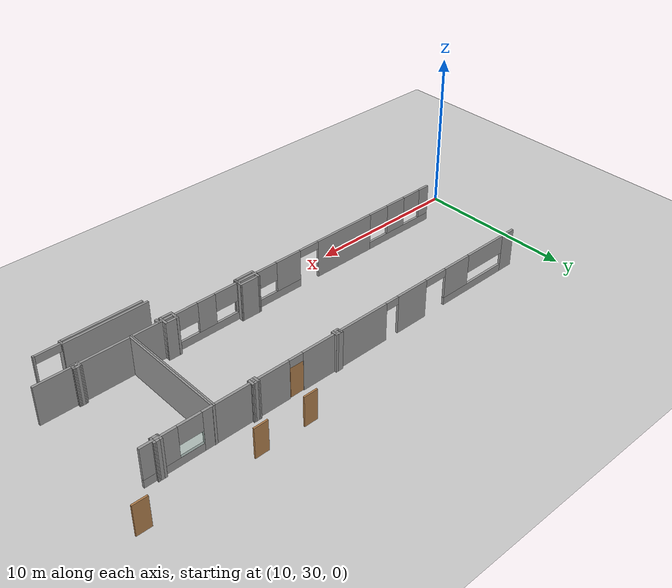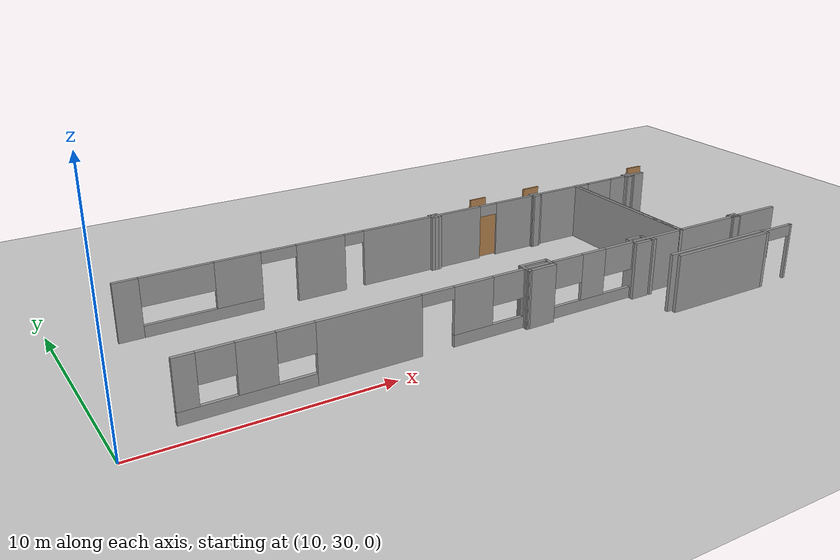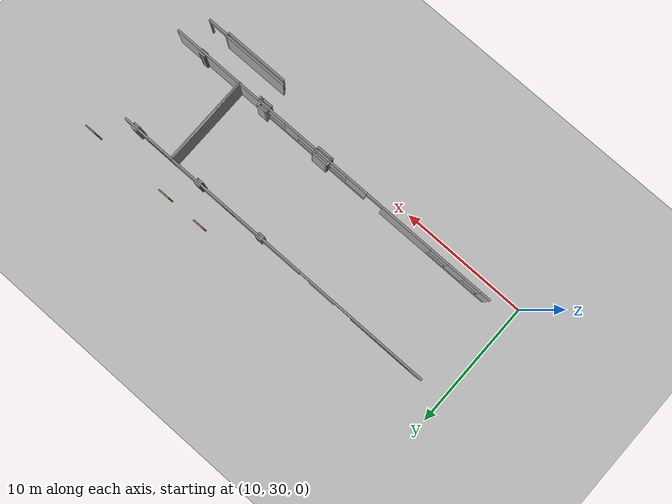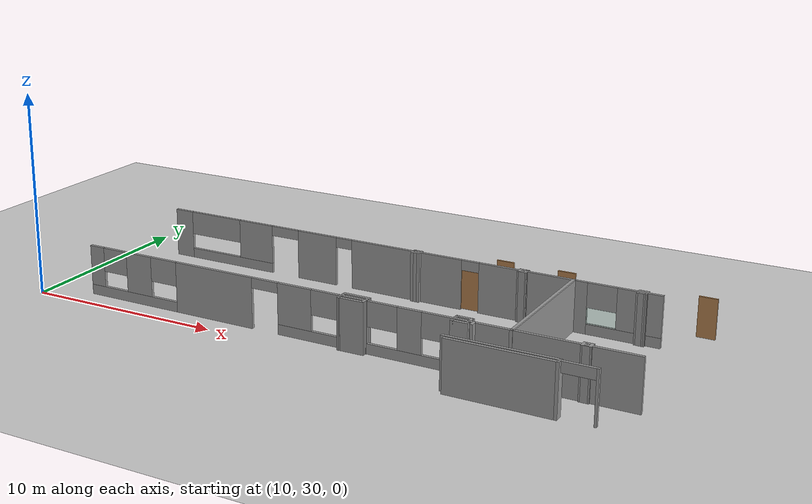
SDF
<sdf version="1.6">
 <world name="default">
  <model name="ground_plane">
   <static>1</static>
   <link name="link">
    <collision name="collision">
     <geometry><plane><normal>0 0 1</normal><size>100 100</size></plane></geometry>
     <surface><friction><ode><mu>100</mu><mu2>50</mu2></ode></friction></surface>
    </collision>
    <visual name="visual">
     <cast_shadows>0</cast_shadows>
     <geometry><plane><normal>0 0 1</normal><size>100 100</size></plane></geometry>
     <material>
      <script><uri>file://media/materials/scripts/gazebo.material</uri><name>Gazebo/Grey</name></script>
     </material>
    </visual>
   </link>
  </model>
  <model name="CVSSP">
   <pose>23.8714 24.094 0 0 -0 0</pose>
   <link name="Wall_0">
    <pose>1.68767 14.035 0 0 -0 0</pose>
    <visual name="Wall_0_Visual_0">
     <pose>-12.7386 0 1.25 0 -0 0</pose>
     <geometry><box><size>1.02282 0.15 2.5</size></box></geometry>
     <material>
      <script><uri>file://media/materials/scripts/gazebo.material</uri><name>Gazebo/Grey</name></script>
      <ambient>0.588235 0.588235 0.588235 1</ambient>
     </material>
    </visual>
    <collision name="Wall_0_Collision_0">
     <geometry><box><size>1.02282 0.15 2.5</size></box></geometry>
     <pose>-12.7386 0 1.25 0 -0 0</pose>
    </collision>
    <visual name="Wall_0_Visual_1">
     <pose>-4.58044 0 1.25 0 -0 0</pose>
     <geometry><box><size>2.22198 0.15 2.5</size></box></geometry>
     <material>
      <script><uri>file://media/materials/scripts/gazebo.material</uri><name>Gazebo/Grey</name></script>
      <ambient>0.588235 0.588235 0.588235 1</ambient>
     </material>
    </visual>
    <collision name="Wall_0_Collision_1">
     <geometry><box><size>2.22198 0.15 2.5</size></box></geometry>
     <pose>-4.58044 0 1.25 0 -0 0</pose>
    </collision>
    <visual name="Wall_0_Visual_2">
     <pose>0.426093 0 1.25 0 -0 0</pose>
     <geometry><box><size>5.99108 0.15 2.5</size></box></geometry>
     <material>
      <script><uri>file://media/materials/scripts/gazebo.material</uri><name>Gazebo/Grey</name></script>
      <ambient>0.588235 0.588235 0.588235 1</ambient>
     </material>
    </visual>
    <collision name="Wall_0_Collision_2">
     <geometry><box><size>5.99108 0.15 2.5</size></box></geometry>
     <pose>0.426093 0 1.25 0 -0 0</pose>
    </collision>
    <visual name="Wall_0_Visual_3">
     <pose>7.01875 0 1.25 0 -0 0</pose>
     <geometry><box><size>5.39422 0.15 2.5</size></box></geometry>
     <material>
      <script><uri>file://media/materials/scripts/gazebo.material</uri><name>Gazebo/Grey</name></script>
      <ambient>0.588235 0.588235 0.588235 1</ambient>
     </material>
    </visual>
    <collision name="Wall_0_Collision_3">
     <geometry><box><size>5.39422 0.15 2.5</size></box></geometry>
     <pose>7.01875 0 1.25 0 -0 0</pose>
    </collision>
    <visual name="Wall_0_Visual_4">
     <pose>-9.74161 0 0.25 0 -0 0</pose>
     <geometry><box><size>4.97113 0.15 0.5</size></box></geometry>
     <material>
      <script><uri>file://media/materials/scripts/gazebo.material</uri><name>Gazebo/Grey</name></script>
      <ambient>0.588235 0.588235 0.588235 1</ambient>
     </material>
    </visual>
    <collision name="Wall_0_Collision_4">
     <geometry><box><size>4.97113 0.15 0.5</size></box></geometry>
     <pose>-9.74161 0 0.25 0 -0 0</pose>
    </collision>
    <visual name="Wall_0_Visual_5">
     <pose>11.4829 0 0.25 0 -0 0</pose>
     <geometry><box><size>3.53415 0.15 0.5</size></box></geometry>
     <material>
      <script><uri>file://media/materials/scripts/gazebo.material</uri><name>Gazebo/Grey</name></script>
      <ambient>0.588235 0.588235 0.588235 1</ambient>
     </material>
    </visual>
    <collision name="Wall_0_Collision_5">
     <geometry><box><size>3.53415 0.15 0.5</size></box></geometry>
     <pose>11.4829 0 0.25 0 -0 0</pose>
    </collision>
    <visual name="Wall_0_Visual_6">
     <pose>-8.24385 0 1.5 0 -0 0</pose>
     <geometry><box><size>1.9756 0.15 2</size></box></geometry>
     <material>
      <script><uri>file://media/materials/scripts/gazebo.material</uri><name>Gazebo/Grey</name></script>
      <ambient>0.588235 0.588235 0.588235 1</ambient>
     </material>
    </visual>
    <collision name="Wall_0_Collision_6">
     <geometry><box><size>1.9756 0.15 2</size></box></geometry>
     <pose>-8.24385 0 1.5 0 -0 0</pose>
    </collision>
    <visual name="Wall_0_Visual_7">
     <pose>-8.24385 0 1.5 0 -0 0</pose>
     <geometry><box><size>1.9756 0.15 2</size></box></geometry>
     <material>
      <script><uri>file://media/materials/scripts/gazebo.material</uri><name>Gazebo/Grey</name></script>
      <ambient>0.588235 0.588235 0.588235 1</ambient>
     </material>
    </visual>
    <collision name="Wall_0_Collision_7">
     <geometry><box><size>1.9756 0.15 2</size></box></geometry>
     <pose>-8.24385 0 1.5 0 -0 0</pose>
    </collision>
    <visual name="Wall_0_Visual_8">
     <pose>12.1924 0 1.5 0 -0 0</pose>
     <geometry><box><size>2.11511 0.15 2</size></box></geometry>
     <material>
      <script><uri>file://media/materials/scripts/gazebo.material</uri><name>Gazebo/Grey</name></script>
      <ambient>0.588235 0.588235 0.588235 1</ambient>
     </material>
    </visual>
    <collision name="Wall_0_Collision_8">
     <geometry><box><size>2.11511 0.15 2</size></box></geometry>
     <pose>12.1924 0 1.5 0 -0 0</pose>
    </collision>
    <visual name="Wall_0_Visual_9">
     <pose>-10.7294 0 1.9 0 -0 0</pose>
     <geometry><box><size>2.99553 0.15 1.2</size></box></geometry>
     <material>
      <script><uri>file://media/materials/scripts/gazebo.material</uri><name>Gazebo/Grey</name></script>
      <ambient>0.588235 0.588235 0.588235 1</ambient>
     </material>
    </visual>
    <collision name="Wall_0_Collision_9">
     <geometry><box><size>2.99553 0.15 1.2</size></box></geometry>
     <pose>-10.7294 0 1.9 0 -0 0</pose>
    </collision>
    <visual name="Wall_0_Visual_10">
     <pose>10.4254 0 1.9 0 -0 0</pose>
     <geometry><box><size>1.41904 0.15 1.2</size></box></geometry>
     <material>
      <script><uri>file://media/materials/scripts/gazebo.material</uri><name>Gazebo/Grey</name></script>
      <ambient>0.588235 0.588235 0.588235 1</ambient>
     </material>
    </visual>
    <collision name="Wall_0_Collision_10">
     <geometry><box><size>1.41904 0.15 1.2</size></box></geometry>
     <pose>10.4254 0 1.9 0 -0 0</pose>
    </collision>
    <visual name="Wall_0_Visual_11">
     <pose>-3.01945 0 2.25 0 -0 0</pose>
     <geometry><box><size>0.9 0.15 0.5</size></box></geometry>
     <material>
      <script><uri>file://media/materials/scripts/gazebo.material</uri><name>Gazebo/Grey</name></script>
      <ambient>0.588235 0.588235 0.588235 1</ambient>
     </material>
    </visual>
    <collision name="Wall_0_Collision_11">
     <geometry><box><size>0.9 0.15 0.5</size></box></geometry>
     <pose>-3.01945 0 2.25 0 -0 0</pose>
    </collision>
    <visual name="Wall_0_Visual_12">
     <pose>3.87163 0 2.25 0 -0 0</pose>
     <geometry><box><size>0.9 0.15 0.5</size></box></geometry>
     <material>
      <script><uri>file://media/materials/scripts/gazebo.material</uri><name>Gazebo/Grey</name></script>
      <ambient>0.588235 0.588235 0.588235 1</ambient>
     </material>
    </visual>
    <collision name="Wall_0_Collision_12">
     <geometry><box><size>0.9 0.15 0.5</size></box></geometry>
     <pose>3.87163 0 2.25 0 -0 0</pose>
    </collision>
    <visual name="Wall_0_Visual_13">
     <pose>-6.47374 0 2.25 0 -0 0</pose>
     <geometry><box><size>1.56462 0.15 0.5</size></box></geometry>
     <material>
      <script><uri>file://media/materials/scripts/gazebo.material</uri><name>Gazebo/Grey</name></script>
      <ambient>0.588235 0.588235 0.588235 1</ambient>
     </material>
    </visual>
    <collision name="Wall_0_Collision_13">
     <geometry><box><size>1.56462 0.15 0.5</size></box></geometry>
     <pose>-6.47374 0 2.25 0 -0 0</pose>
    </collision>
    <visual name="Wall_0_Visual_14">
     <pose>-6.47374 0 2.25 0 -0 0</pose>
     <geometry><box><size>1.56462 0.15 0.5</size></box></geometry>
     <material>
      <script><uri>file://media/materials/scripts/gazebo.material</uri><name>Gazebo/Grey</name></script>
      <ambient>0.588235 0.588235 0.588235 1</ambient>
     </material>
    </visual>
    <collision name="Wall_0_Collision_14">
     <geometry><box><size>1.56462 0.15 0.5</size></box></geometry>
     <pose>-6.47374 0 2.25 0 -0 0</pose>
    </collision>
   </link>
   <link name="Wall_101">
    <collision name="Wall_101_Collision">
     <geometry><box><size>0.38805 0.15 2.5</size></box></geometry>
     <pose>0 0 1.25 0 -0 0</pose>
    </collision>
    <visual name="Wall_101_Visual">
     <pose>0 0 1.25 0 -0 0</pose>
     <geometry><box><size>0.38805 0.15 2.5</size></box></geometry>
     <material>
      <script><uri>file://media/materials/scripts/gazebo.material</uri><name>Gazebo/Grey</name></script>
      <ambient>1 1 1 1</ambient>
     </material>
    </visual>
    <pose>13.6125 5.08725 0 0 0 -1.5708</pose>
   </link>
   <link name="Wall_103">
    <pose>14.4193 5.12692 0 0 -0 3.13861</pose>
    <visual name="Wall_103_Visual_0">
     <pose>-0.803949 0 1.25 0 -0 0</pose>
     <geometry><box><size>0.113401 0.15 2.5</size></box></geometry>
     <material>
      <script><uri>file://media/materials/scripts/gazebo.material</uri><name>Gazebo/Grey</name></script>
      <ambient>1 1 1 1</ambient>
     </material>
    </visual>
    <collision name="Wall_103_Collision_0">
     <geometry><box><size>0.113401 0.15 2.5</size></box></geometry>
     <pose>-0.803949 0 1.25 0 -0 0</pose>
    </collision>
    <visual name="Wall_103_Visual_1">
     <pose>0.799121 0 1.25 0 -0 0</pose>
     <geometry><box><size>0.123058 0.15 2.5</size></box></geometry>
     <material>
      <script><uri>file://media/materials/scripts/gazebo.material</uri><name>Gazebo/Grey</name></script>
      <ambient>1 1 1 1</ambient>
     </material>
    </visual>
    <collision name="Wall_103_Collision_1">
     <geometry><box><size>0.123058 0.15 2.5</size></box></geometry>
     <pose>0.799121 0 1.25 0 -0 0</pose>
    </collision>
    <visual name="Wall_103_Visual_2">
     <pose>-0.004828 0 2.25 0 -0 0</pose>
     <geometry><box><size>1.48484 0.15 0.5</size></box></geometry>
     <material>
      <script><uri>file://media/materials/scripts/gazebo.material</uri><name>Gazebo/Grey</name></script>
      <ambient>1 1 1 1</ambient>
     </material>
    </visual>
    <collision name="Wall_103_Collision_2">
     <geometry><box><size>1.48484 0.15 0.5</size></box></geometry>
     <pose>-0.004828 0 2.25 0 -0 0</pose>
    </collision>
   </link>
   <link name="Wall_19">
    <pose>2.41083 7.10891 0 0 -0 3.14159</pose>
    <visual name="Wall_19_Visual_0">
     <pose>-9.80896 0 1.25 0 -0 0</pose>
     <geometry><box><size>8.38208 0.15 2.5</size></box></geometry>
     <material>
      <script><uri>file://media/materials/scripts/gazebo.material</uri><name>Gazebo/Grey</name></script>
      <ambient>0.588235 0.588235 0.588235 1</ambient>
     </material>
    </visual>
    <collision name="Wall_19_Collision_0">
     <geometry><box><size>8.38208 0.15 2.5</size></box></geometry>
     <pose>-9.80896 0 1.25 0 -0 0</pose>
    </collision>
    <visual name="Wall_19_Visual_1">
     <pose>6.72902 0 1.25 0 -0 0</pose>
     <geometry><box><size>4.28675 0.15 2.5</size></box></geometry>
     <material>
      <script><uri>file://media/materials/scripts/gazebo.material</uri><name>Gazebo/Grey</name></script>
      <ambient>0.588235 0.588235 0.588235 1</ambient>
     </material>
    </visual>
    <collision name="Wall_19_Collision_1">
     <geometry><box><size>4.28675 0.15 2.5</size></box></geometry>
     <pose>6.72902 0 1.25 0 -0 0</pose>
    </collision>
    <visual name="Wall_19_Visual_2">
     <pose>-1.21771 0 0.25 0 -0 0</pose>
     <geometry><box><size>8.80043 0.15 0.5</size></box></geometry>
     <material>
      <script><uri>file://media/materials/scripts/gazebo.material</uri><name>Gazebo/Grey</name></script>
      <ambient>0.588235 0.588235 0.588235 1</ambient>
     </material>
    </visual>
    <collision name="Wall_19_Collision_2">
     <geometry><box><size>8.80043 0.15 0.5</size></box></geometry>
     <pose>-1.21771 0 0.25 0 -0 0</pose>
    </collision>
    <visual name="Wall_19_Visual_3">
     <pose>11.4362 0 0.25 0 -0 0</pose>
     <geometry><box><size>5.1276 0.15 0.5</size></box></geometry>
     <material>
      <script><uri>file://media/materials/scripts/gazebo.material</uri><name>Gazebo/Grey</name></script>
      <ambient>0.588235 0.588235 0.588235 1</ambient>
     </material>
    </visual>
    <collision name="Wall_19_Collision_3">
     <geometry><box><size>5.1276 0.15 0.5</size></box></geometry>
     <pose>11.4362 0 0.25 0 -0 0</pose>
    </collision>
    <visual name="Wall_19_Visual_4">
     <pose>-3.53944 0 1.5 0 -0 0</pose>
     <geometry><box><size>1.17771 0.15 2</size></box></geometry>
     <material>
      <script><uri>file://media/materials/scripts/gazebo.material</uri><name>Gazebo/Grey</name></script>
      <ambient>0.588235 0.588235 0.588235 1</ambient>
     </material>
    </visual>
    <collision name="Wall_19_Collision_4">
     <geometry><box><size>1.17771 0.15 2</size></box></geometry>
     <pose>-3.53944 0 1.5 0 -0 0</pose>
    </collision>
    <visual name="Wall_19_Visual_5">
     <pose>-0.741003 0 1.5 0 -0 0</pose>
     <geometry><box><size>1.46268 0.15 2</size></box></geometry>
     <material>
      <script><uri>file://media/materials/scripts/gazebo.material</uri><name>Gazebo/Grey</name></script>
      <ambient>0.588235 0.588235 0.588235 1</ambient>
     </material>
    </visual>
    <collision name="Wall_19_Collision_5">
     <geometry><box><size>1.46268 0.15 2</size></box></geometry>
     <pose>-0.741003 0 1.5 0 -0 0</pose>
    </collision>
    <visual name="Wall_19_Visual_6">
     <pose>2.29704 0 1.5 0 -0 0</pose>
     <geometry><box><size>1.77092 0.15 2</size></box></geometry>
     <material>
      <script><uri>file://media/materials/scripts/gazebo.material</uri><name>Gazebo/Grey</name></script>
      <ambient>0.588235 0.588235 0.588235 1</ambient>
     </material>
    </visual>
    <collision name="Wall_19_Collision_6">
     <geometry><box><size>1.77092 0.15 2</size></box></geometry>
     <pose>2.29704 0 1.5 0 -0 0</pose>
    </collision>
    <visual name="Wall_19_Visual_7">
     <pose>2.29704 0 1.5 0 -0 0</pose>
     <geometry><box><size>1.77092 0.15 2</size></box></geometry>
     <material>
      <script><uri>file://media/materials/scripts/gazebo.material</uri><name>Gazebo/Grey</name></script>
      <ambient>0.588235 0.588235 0.588235 1</ambient>
     </material>
    </visual>
    <collision name="Wall_19_Collision_7">
     <geometry><box><size>1.77092 0.15 2</size></box></geometry>
     <pose>2.29704 0 1.5 0 -0 0</pose>
    </collision>
    <visual name="Wall_19_Visual_8">
     <pose>11.0786 0 1.5 0 -0 0</pose>
     <geometry><box><size>1.46509 0.15 2</size></box></geometry>
     <material>
      <script><uri>file://media/materials/scripts/gazebo.material</uri><name>Gazebo/Grey</name></script>
      <ambient>0.588235 0.588235 0.588235 1</ambient>
     </material>
    </visual>
    <collision name="Wall_19_Collision_8">
     <geometry><box><size>1.46509 0.15 2</size></box></geometry>
     <pose>11.0786 0 1.5 0 -0 0</pose>
    </collision>
    <visual name="Wall_19_Visual_9">
     <pose>13.5916 0 1.5 0 -0 0</pose>
     <geometry><box><size>0.816793 0.15 2</size></box></geometry>
     <material>
      <script><uri>file://media/materials/scripts/gazebo.material</uri><name>Gazebo/Grey</name></script>
      <ambient>0.588235 0.588235 0.588235 1</ambient>
     </material>
    </visual>
    <collision name="Wall_19_Collision_9">
     <geometry><box><size>0.816793 0.15 2</size></box></geometry>
     <pose>13.5916 0 1.5 0 -0 0</pose>
    </collision>
    <visual name="Wall_19_Visual_10">
     <pose>-4.87311 0 1.9 0 -0 0</pose>
     <geometry><box><size>1.48963 0.15 1.2</size></box></geometry>
     <material>
      <script><uri>file://media/materials/scripts/gazebo.material</uri><name>Gazebo/Grey</name></script>
      <ambient>0.588235 0.588235 0.588235 1</ambient>
     </material>
    </visual>
    <collision name="Wall_19_Collision_10">
     <geometry><box><size>1.48963 0.15 1.2</size></box></geometry>
     <pose>-4.87311 0 1.9 0 -0 0</pose>
    </collision>
    <visual name="Wall_19_Visual_11">
     <pose>9.60921 0 1.9 0 -0 0</pose>
     <geometry><box><size>1.47362 0.15 1.2</size></box></geometry>
     <material>
      <script><uri>file://media/materials/scripts/gazebo.material</uri><name>Gazebo/Grey</name></script>
      <ambient>0.588235 0.588235 0.588235 1</ambient>
     </material>
    </visual>
    <collision name="Wall_19_Collision_11">
     <geometry><box><size>1.47362 0.15 1.2</size></box></geometry>
     <pose>9.60921 0 1.9 0 -0 0</pose>
    </collision>
    <visual name="Wall_19_Visual_12">
     <pose>-2.21146 0 1.9 0 -0 0</pose>
     <geometry><box><size>1.47823 0.15 1.2</size></box></geometry>
     <material>
      <script><uri>file://media/materials/scripts/gazebo.material</uri><name>Gazebo/Grey</name></script>
      <ambient>0.588235 0.588235 0.588235 1</ambient>
     </material>
    </visual>
    <collision name="Wall_19_Collision_12">
     <geometry><box><size>1.47823 0.15 1.2</size></box></geometry>
     <pose>-2.21146 0 1.9 0 -0 0</pose>
    </collision>
    <visual name="Wall_19_Visual_13">
     <pose>0.700959 0 1.9 0 -0 0</pose>
     <geometry><box><size>1.42124 0.15 1.2</size></box></geometry>
     <material>
      <script><uri>file://media/materials/scripts/gazebo.material</uri><name>Gazebo/Grey</name></script>
      <ambient>0.588235 0.588235 0.588235 1</ambient>
     </material>
    </visual>
    <collision name="Wall_19_Collision_13">
     <geometry><box><size>1.42124 0.15 1.2</size></box></geometry>
     <pose>0.700959 0 1.9 0 -0 0</pose>
    </collision>
    <visual name="Wall_19_Visual_14">
     <pose>12.4972 0 1.9 0 -0 0</pose>
     <geometry><box><size>1.3721 0.15 1.2</size></box></geometry>
     <material>
      <script><uri>file://media/materials/scripts/gazebo.material</uri><name>Gazebo/Grey</name></script>
      <ambient>0.588235 0.588235 0.588235 1</ambient>
     </material>
    </visual>
    <collision name="Wall_19_Collision_14">
     <geometry><box><size>1.3721 0.15 1.2</size></box></geometry>
     <pose>12.4972 0 1.9 0 -0 0</pose>
    </collision>
    <visual name="Wall_19_Visual_15">
     <pose>3.88408 0 2.25 0 -0 0</pose>
     <geometry><box><size>1.40314 0.15 0.5</size></box></geometry>
     <material>
      <script><uri>file://media/materials/scripts/gazebo.material</uri><name>Gazebo/Grey</name></script>
      <ambient>0.588235 0.588235 0.588235 1</ambient>
     </material>
    </visual>
    <collision name="Wall_19_Collision_15">
     <geometry><box><size>1.40314 0.15 0.5</size></box></geometry>
     <pose>3.88408 0 2.25 0 -0 0</pose>
    </collision>
    <visual name="Wall_19_Visual_16">
     <pose>3.88408 0 2.25 0 -0 0</pose>
     <geometry><box><size>1.40314 0.15 0.5</size></box></geometry>
     <material>
      <script><uri>file://media/materials/scripts/gazebo.material</uri><name>Gazebo/Grey</name></script>
      <ambient>0.588235 0.588235 0.588235 1</ambient>
     </material>
    </visual>
    <collision name="Wall_19_Collision_16">
     <geometry><box><size>1.40314 0.15 0.5</size></box></geometry>
     <pose>3.88408 0 2.25 0 -0 0</pose>
    </collision>
   </link>
   <link name="Wall_32">
    <collision name="Wall_32_Collision">
     <geometry><box><size>0.5 0.15 2.5</size></box></geometry>
     <pose>0 0 1.25 0 -0 0</pose>
    </collision>
    <visual name="Wall_32_Visual">
     <pose>0 0 1.25 0 -0 0</pose>
     <geometry><box><size>0.5 0.15 2.5</size></box></geometry>
     <material>
      <script><uri>file://media/materials/scripts/gazebo.material</uri><name>Gazebo/Grey</name></script>
      <ambient>1 1 1 1</ambient>
     </material>
    </visual>
    <pose>2.55582 7.23766 0 0 -0 1.5708</pose>
   </link>
   <link name="Wall_33">
    <collision name="Wall_33_Collision">
     <geometry><box><size>1.35002 0.15 2.5</size></box></geometry>
     <pose>0 0 1.25 0 -0 0</pose>
    </collision>
    <visual name="Wall_33_Visual">
     <pose>0 0 1.25 0 -0 0</pose>
     <geometry><box><size>1.35002 0.15 2.5</size></box></geometry>
     <material>
      <script><uri>file://media/materials/scripts/gazebo.material</uri><name>Gazebo/Grey</name></script>
      <ambient>1 1 1 1</ambient>
     </material>
    </visual>
    <pose>3.15583 7.41134 0 0 0 -0.002197</pose>
   </link>
   <link name="Wall_34">
    <collision name="Wall_34_Collision">
     <geometry><box><size>0.477081 0.15 2.5</size></box></geometry>
     <pose>0 0 1.25 0 -0 0</pose>
    </collision>
    <visual name="Wall_34_Visual">
     <pose>0 0 1.25 0 -0 0</pose>
     <geometry><box><size>0.477081 0.15 2.5</size></box></geometry>
     <material>
      <script><uri>file://media/materials/scripts/gazebo.material</uri><name>Gazebo/Grey</name></script>
      <ambient>1 1 1 1</ambient>
     </material>
    </visual>
    <pose>3.75756 7.24649 0 0 0 -1.56021</pose>
   </link>
   <link name="Wall_35">
    <collision name="Wall_35_Collision">
     <geometry><box><size>0.362174 0.15 2.5</size></box></geometry>
     <pose>0 0 1.25 0 -0 0</pose>
    </collision>
    <visual name="Wall_35_Visual">
     <pose>0 0 1.25 0 -0 0</pose>
     <geometry><box><size>0.362174 0.15 2.5</size></box></geometry>
     <material>
      <script><uri>file://media/materials/scripts/gazebo.material</uri><name>Gazebo/Grey</name></script>
      <ambient>1 1 1 1</ambient>
     </material>
    </visual>
    <pose>3.75517 6.99018 0 0 0 -1.6097</pose>
   </link>
   <link name="Wall_36">
    <collision name="Wall_36_Collision">
     <geometry><box><size>1.34683 0.15 2.5</size></box></geometry>
     <pose>0 0 1.25 0 -0 0</pose>
    </collision>
    <visual name="Wall_36_Visual">
     <pose>0 0 1.25 0 -0 0</pose>
     <geometry><box><size>1.34683 0.15 2.5</size></box></geometry>
     <material>
      <script><uri>file://media/materials/scripts/gazebo.material</uri><name>Gazebo/Grey</name></script>
      <ambient>1 1 1 1</ambient>
     </material>
    </visual>
    <pose>3.15268 6.87142 0 0 0 -3.1286</pose>
   </link>
   <link name="Wall_37">
    <collision name="Wall_37_Collision">
     <geometry><box><size>0.15 0.15 2.5</size></box></geometry>
     <pose>0 0 1.25 0 -0 0</pose>
    </collision>
    <visual name="Wall_37_Visual">
     <pose>0 0 1.25 0 -0 0</pose>
     <geometry><box><size>0.15 0.15 2.5</size></box></geometry>
     <material>
      <script><uri>file://media/materials/scripts/gazebo.material</uri><name>Gazebo/Grey</name></script>
      <ambient>1 1 1 1</ambient>
     </material>
    </visual>
    <pose>2.55431 6.86365 0 0 -0 0</pose>
   </link>
   <link name="Wall_38">
    <collision name="Wall_38_Collision">
     <geometry><box><size>0.258168 0.15 2.5</size></box></geometry>
     <pose>0 0 1.25 0 -0 0</pose>
    </collision>
    <visual name="Wall_38_Visual">
     <pose>0 0 1.25 0 -0 0</pose>
     <geometry><box><size>0.258168 0.15 2.5</size></box></geometry>
     <material>
      <script><uri>file://media/materials/scripts/gazebo.material</uri><name>Gazebo/Grey</name></script>
      <ambient>1 1 1 1</ambient>
     </material>
    </visual>
    <pose>2.55648 6.91769 0 0 -0 1.61078</pose>
   </link>
   <link name="Wall_40">
    <collision name="Wall_40_Collision">
     <geometry><box><size>0.82 0.15 2.5</size></box></geometry>
     <pose>0 0 1.25 0 -0 0</pose>
    </collision>
    <visual name="Wall_40_Visual">
     <pose>0 0 1.25 0 -0 0</pose>
     <geometry><box><size>0.82 0.15 2.5</size></box></geometry>
     <material>
      <script><uri>file://media/materials/scripts/gazebo.material</uri><name>Gazebo/Grey</name></script>
      <ambient>1 1 1 1</ambient>
     </material>
    </visual>
    <pose>8.4225 7.39869 0 0 -0 0</pose>
   </link>
   <link name="Wall_41">
    <collision name="Wall_41_Collision">
     <geometry><box><size>0.67 0.15 2.5</size></box></geometry>
     <pose>0 0 1.25 0 -0 0</pose>
    </collision>
    <visual name="Wall_41_Visual">
     <pose>0 0 1.25 0 -0 0</pose>
     <geometry><box><size>0.67 0.15 2.5</size></box></geometry>
     <material>
      <script><uri>file://media/materials/scripts/gazebo.material</uri><name>Gazebo/Grey</name></script>
      <ambient>1 1 1 1</ambient>
     </material>
    </visual>
    <pose>8.7575 7.13868 0 0 0 -1.5708</pose>
   </link>
   <link name="Wall_42">
    <collision name="Wall_42_Collision">
     <geometry><box><size>0.84 0.15 2.5</size></box></geometry>
     <pose>0 0 1.25 0 -0 0</pose>
    </collision>
    <visual name="Wall_42_Visual">
     <pose>0 0 1.25 0 -0 0</pose>
     <geometry><box><size>0.84 0.15 2.5</size></box></geometry>
     <material>
      <script><uri>file://media/materials/scripts/gazebo.material</uri><name>Gazebo/Grey</name></script>
      <ambient>1 1 1 1</ambient>
     </material>
    </visual>
    <pose>8.4125 6.87868 0 0 -0 3.14159</pose>
   </link>
   <link name="Wall_43">
    <collision name="Wall_43_Collision">
     <geometry><box><size>0.68 0.15 2.5</size></box></geometry>
     <pose>0 0 1.25 0 -0 0</pose>
    </collision>
    <visual name="Wall_43_Visual">
     <pose>0 0 1.25 0 -0 0</pose>
     <geometry><box><size>0.68 0.15 2.5</size></box></geometry>
     <material>
      <script><uri>file://media/materials/scripts/gazebo.material</uri><name>Gazebo/Grey</name></script>
      <ambient>1 1 1 1</ambient>
     </material>
    </visual>
    <pose>8.0675 7.14368 0 0 -0 1.5708</pose>
   </link>
   <link name="Wall_45">
    <collision name="Wall_45_Collision">
     <geometry><box><size>0.380217 0.15 2.5</size></box></geometry>
     <pose>0 0 1.25 0 -0 0</pose>
    </collision>
    <visual name="Wall_45_Visual">
     <pose>0 0 1.25 0 -0 0</pose>
     <geometry><box><size>0.380217 0.15 2.5</size></box></geometry>
     <material>
      <script><uri>file://media/materials/scripts/gazebo.material</uri><name>Gazebo/Grey</name></script>
      <ambient>1 1 1 1</ambient>
     </material>
    </visual>
    <pose>8.9975 6.98369 0 0 0 -1.5708</pose>
   </link>
   <link name="Wall_48">
    <collision name="Wall_48_Collision">
     <geometry><box><size>0.485616 0.15 2.5</size></box></geometry>
     <pose>0 0 1.25 0 -0 0</pose>
    </collision>
    <visual name="Wall_48_Visual">
     <pose>0 0 1.25 0 -0 0</pose>
     <geometry><box><size>0.485616 0.15 2.5</size></box></geometry>
     <material>
      <script><uri>file://media/materials/scripts/gazebo.material</uri><name>Gazebo/Grey</name></script>
      <ambient>1 1 1 1</ambient>
     </material>
    </visual>
    <pose>13.9944 7.29164 0 0 0 -0.000129</pose>
   </link>
   <link name="Wall_49">
    <collision name="Wall_49_Collision">
     <geometry><box><size>0.405637 0.15 2.5</size></box></geometry>
     <pose>0 0 1.25 0 -0 0</pose>
    </collision>
    <visual name="Wall_49_Visual">
     <pose>0 0 1.25 0 -0 0</pose>
     <geometry><box><size>0.405637 0.15 2.5</size></box></geometry>
     <material>
      <script><uri>file://media/materials/scripts/gazebo.material</uri><name>Gazebo/Grey</name></script>
      <ambient>1 1 1 1</ambient>
     </material>
    </visual>
    <pose>14.162 7.1638 0 0 0 -1.57228</pose>
   </link>
   <link name="Wall_50">
    <collision name="Wall_50_Collision">
     <geometry><box><size>0.483145 0.15 2.5</size></box></geometry>
     <pose>0 0 1.25 0 -0 0</pose>
    </collision>
    <visual name="Wall_50_Visual">
     <pose>0 0 1.25 0 -0 0</pose>
     <geometry><box><size>0.483145 0.15 2.5</size></box></geometry>
     <material>
      <script><uri>file://media/materials/scripts/gazebo.material</uri><name>Gazebo/Grey</name></script>
      <ambient>1 1 1 1</ambient>
     </material>
    </visual>
    <pose>13.9952 7.03593 0 0 0 -3.14129</pose>
   </link>
   <link name="Wall_51">
    <collision name="Wall_51_Collision">
     <geometry><box><size>0.405791 0.15 2.5</size></box></geometry>
     <pose>0 0 1.25 0 -0 0</pose>
    </collision>
    <visual name="Wall_51_Visual">
     <pose>0 0 1.25 0 -0 0</pose>
     <geometry><box><size>0.405791 0.15 2.5</size></box></geometry>
     <material>
      <script><uri>file://media/materials/scripts/gazebo.material</uri><name>Gazebo/Grey</name></script>
      <ambient>1 1 1 1</ambient>
     </material>
    </visual>
    <pose>13.8276 7.16378 0 0 -0 1.5792</pose>
   </link>
   <link name="Wall_53">
    <collision name="Wall_53_Collision">
     <geometry><box><size>7.09358 0.15 2.5</size></box></geometry>
     <pose>0 0 1.25 0 -0 0</pose>
    </collision>
    <visual name="Wall_53_Visual">
     <pose>0 0 1.25 0 -0 0</pose>
     <geometry><box><size>7.09358 0.15 2.5</size></box></geometry>
     <material>
      <script><uri>file://media/materials/scripts/gazebo.material</uri><name>Gazebo/Grey</name></script>
      <ambient>1 1 1 1</ambient>
     </material>
    </visual>
    <pose>10.7501 10.5821 0 0 0 -1.5708</pose>
   </link>
   <link name="Wall_60">
    <collision name="Wall_60_Collision">
     <geometry><box><size>7.09041 0.15 2.5</size></box></geometry>
     <pose>0 0 1.25 0 -0 0</pose>
    </collision>
    <visual name="Wall_60_Visual">
     <pose>0 0 1.25 0 -0 0</pose>
     <geometry><box><size>7.09041 0.15 2.5</size></box></geometry>
     <material>
      <script><uri>file://media/materials/scripts/gazebo.material</uri><name>Gazebo/Grey</name></script>
      <ambient>0.588235 0.588235 0.588235 1</ambient>
     </material>
    </visual>
    <pose>10.6949 10.5553 0 0 0 -1.57007</pose>
   </link>
   <link name="Wall_607">
    <collision name="Wall_607_Collision">
     <geometry><box><size>0.487238 0.15 2.5</size></box></geometry>
     <pose>0 0 1.25 0 -0 0</pose>
    </collision>
    <visual name="Wall_607_Visual">
     <pose>0 0 1.25 0 -0 0</pose>
     <geometry><box><size>0.487238 0.15 2.5</size></box></geometry>
     <material>
      <script><uri>file://media/materials/scripts/gazebo.material</uri><name>Gazebo/Grey</name></script>
      <ambient>1 1 1 1</ambient>
     </material>
    </visual>
    <pose>8.24171 14.1532 0 0 -0 0</pose>
   </link>
   <link name="Wall_608">
    <collision name="Wall_608_Collision">
     <geometry><box><size>0.414583 0.15 2.5</size></box></geometry>
     <pose>0 0 1.25 0 -0 0</pose>
    </collision>
    <visual name="Wall_608_Visual">
     <pose>0 0 1.25 0 -0 0</pose>
     <geometry><box><size>0.414583 0.15 2.5</size></box></geometry>
     <material>
      <script><uri>file://media/materials/scripts/gazebo.material</uri><name>Gazebo/Grey</name></script>
      <ambient>1 1 1 1</ambient>
     </material>
    </visual>
    <pose>8.40868 14.021 0 0 0 -1.5833</pose>
   </link>
   <link name="Wall_609">
    <collision name="Wall_609_Collision">
     <geometry><box><size>0.477386 0.15 2.5</size></box></geometry>
     <pose>0 0 1.25 0 -0 0</pose>
    </collision>
    <visual name="Wall_609_Visual">
     <pose>0 0 1.25 0 -0 0</pose>
     <geometry><box><size>0.477386 0.15 2.5</size></box></geometry>
     <material>
      <script><uri>file://media/materials/scripts/gazebo.material</uri><name>Gazebo/Grey</name></script>
      <ambient>1 1 1 1</ambient>
     </material>
    </visual>
    <pose>8.24336 13.8871 0 0 0 -3.13149</pose>
   </link>
   <link name="Wall_610">
    <collision name="Wall_610_Collision">
     <geometry><box><size>0.417827 0.15 2.5</size></box></geometry>
     <pose>0 0 1.25 0 -0 0</pose>
    </collision>
    <visual name="Wall_610_Visual">
     <pose>0 0 1.25 0 -0 0</pose>
     <geometry><box><size>0.417827 0.15 2.5</size></box></geometry>
     <material>
      <script><uri>file://media/materials/scripts/gazebo.material</uri><name>Gazebo/Grey</name></script>
      <ambient>1 1 1 1</ambient>
     </material>
    </visual>
    <pose>8.0764 14.0193 0 0 -0 1.59548</pose>
   </link>
   <link name="Wall_613">
    <collision name="Wall_613_Collision">
     <geometry><box><size>0.485444 0.15 2.5</size></box></geometry>
     <pose>0 0 1.25 0 -0 0</pose>
    </collision>
    <visual name="Wall_613_Visual">
     <pose>0 0 1.25 0 -0 0</pose>
     <geometry><box><size>0.485444 0.15 2.5</size></box></geometry>
     <material>
      <script><uri>file://media/materials/scripts/gazebo.material</uri><name>Gazebo/Grey</name></script>
      <ambient>1 1 1 1</ambient>
     </material>
    </visual>
    <pose>2.69957 14.1578 0 0 -0 0</pose>
   </link>
   <link name="Wall_614">
    <collision name="Wall_614_Collision">
     <geometry><box><size>0.422338 0.15 2.5</size></box></geometry>
     <pose>0 0 1.25 0 -0 0</pose>
    </collision>
    <visual name="Wall_614_Visual">
     <pose>0 0 1.25 0 -0 0</pose>
     <geometry><box><size>0.422338 0.15 2.5</size></box></geometry>
     <material>
      <script><uri>file://media/materials/scripts/gazebo.material</uri><name>Gazebo/Grey</name></script>
      <ambient>1 1 1 1</ambient>
     </material>
    </visual>
    <pose>2.86727 14.0219 0 0 0 -1.5708</pose>
   </link>
   <link name="Wall_615">
    <collision name="Wall_615_Collision">
     <geometry><box><size>0.479662 0.15 2.5</size></box></geometry>
     <pose>0 0 1.25 0 -0 0</pose>
    </collision>
    <visual name="Wall_615_Visual">
     <pose>0 0 1.25 0 -0 0</pose>
     <geometry><box><size>0.479662 0.15 2.5</size></box></geometry>
     <material>
      <script><uri>file://media/materials/scripts/gazebo.material</uri><name>Gazebo/Grey</name></script>
      <ambient>1 1 1 1</ambient>
     </material>
    </visual>
    <pose>2.70247 13.8861 0 0 -0 3.14159</pose>
   </link>
   <link name="Wall_616">
    <collision name="Wall_616_Collision">
     <geometry><box><size>0.416065 0.15 2.5</size></box></geometry>
     <pose>0 0 1.25 0 -0 0</pose>
    </collision>
    <visual name="Wall_616_Visual">
     <pose>0 0 1.25 0 -0 0</pose>
     <geometry><box><size>0.416065 0.15 2.5</size></box></geometry>
     <material>
      <script><uri>file://media/materials/scripts/gazebo.material</uri><name>Gazebo/Grey</name></script>
      <ambient>1 1 1 1</ambient>
     </material>
    </visual>
    <pose>2.53766 14.0191 0 0 -0 1.5708</pose>
   </link>
   <link name="Wall_62">
    <collision name="Wall_62_Collision">
     <geometry><box><size>0.5 0.15 2.5</size></box></geometry>
     <pose>0 0 1.25 0 -0 0</pose>
    </collision>
    <visual name="Wall_62_Visual">
     <pose>0 0 1.25 0 -0 0</pose>
     <geometry><box><size>0.5 0.15 2.5</size></box></geometry>
     <material>
      <script><uri>file://media/materials/scripts/gazebo.material</uri><name>Gazebo/Grey</name></script>
      <ambient>1 1 1 1</ambient>
     </material>
    </visual>
    <pose>13.9808 14.1734 0 0 -0 0</pose>
   </link>
   <link name="Wall_63">
    <collision name="Wall_63_Collision">
     <geometry><box><size>0.433407 0.15 2.5</size></box></geometry>
     <pose>0 0 1.25 0 -0 0</pose>
    </collision>
    <visual name="Wall_63_Visual">
     <pose>0 0 1.25 0 -0 0</pose>
     <geometry><box><size>0.433407 0.15 2.5</size></box></geometry>
     <material>
      <script><uri>file://media/materials/scripts/gazebo.material</uri><name>Gazebo/Grey</name></script>
      <ambient>1 1 1 1</ambient>
     </material>
    </visual>
    <pose>14.1548 14.0317 0 0 0 -1.57777</pose>
   </link>
   <link name="Wall_64">
    <collision name="Wall_64_Collision">
     <geometry><box><size>0.498059 0.15 2.5</size></box></geometry>
     <pose>0 0 1.25 0 -0 0</pose>
    </collision>
    <visual name="Wall_64_Visual">
     <pose>0 0 1.25 0 -0 0</pose>
     <geometry><box><size>0.498059 0.15 2.5</size></box></geometry>
     <material>
      <script><uri>file://media/materials/scripts/gazebo.material</uri><name>Gazebo/Grey</name></script>
      <ambient>1 1 1 1</ambient>
     </material>
    </visual>
    <pose>13.9798 13.8925 0 0 -0 3.12731</pose>
   </link>
   <link name="Wall_65">
    <collision name="Wall_65_Collision">
     <geometry><box><size>0.428419 0.15 2.5</size></box></geometry>
     <pose>0 0 1.25 0 -0 0</pose>
    </collision>
    <visual name="Wall_65_Visual">
     <pose>0 0 1.25 0 -0 0</pose>
     <geometry><box><size>0.428419 0.15 2.5</size></box></geometry>
     <material>
      <script><uri>file://media/materials/scripts/gazebo.material</uri><name>Gazebo/Grey</name></script>
      <ambient>1 1 1 1</ambient>
     </material>
    </visual>
    <pose>13.8008 14.0342 0 0 -0 1.5708</pose>
   </link>
   <link name="Wall_95">
    <collision name="Wall_95_Collision">
     <geometry><box><size>5.10938 0.15 2.5</size></box></geometry>
     <pose>0 0 1.25 0 -0 0</pose>
    </collision>
    <visual name="Wall_95_Visual">
     <pose>0 0 1.25 0 -0 0</pose>
     <geometry><box><size>5.10938 0.15 2.5</size></box></geometry>
     <material>
      <script><uri>file://media/materials/scripts/gazebo.material</uri><name>Gazebo/Grey</name></script>
      <ambient>1 1 1 1</ambient>
     </material>
    </visual>
    <pose>11.1328 4.96823 0 0 -0 0</pose>
   </link>
   <link name="Wall_99">
    <collision name="Wall_99_Collision">
     <geometry><box><size>5.30775 0.15 2.5</size></box></geometry>
     <pose>0 0 1.25 0 -0 0</pose>
    </collision>
    <visual name="Wall_99_Visual">
     <pose>0 0 1.25 0 -0 0</pose>
     <geometry><box><size>5.30775 0.15 2.5</size></box></geometry>
     <material>
      <script><uri>file://media/materials/scripts/gazebo.material</uri><name>Gazebo/Grey</name></script>
      <ambient>1 1 1 1</ambient>
     </material>
    </visual>
    <pose>11.0336 5.20628 0 0 -0 3.14159</pose>
   </link>
   <static>1</static>
  </model>
  <model name="Basic_ply_door">
   <link name="link">
    <pose>1.20031 2.43241 0.995323 -0 -0 -0.009284</pose>
    <inertial>
     <mass>0.5167</mass>
     <inertia>
      <ixx>0.00086117</ixx>
      <ixy>0</ixy>
      <ixz>0</ixz>
      <iyy>0.00086117</iyy>
      <iyz>0</iyz>
      <izz>0.00086117</izz>
     </inertia>
    </inertial>
    <gravity>0</gravity>
    <visual name="visual">
     <geometry><box><size>0.88 0.1 1.96</size></box></geometry>
     <material>
      <script><uri>file://media/materials/scripts/gazebo.material</uri><name>Gazebo/Wood</name></script>
      <shader type="pixel"><normal_map>__default__</normal_map></shader>
      <ambient>1 1 1 1</ambient>
      <diffuse>1 1 1 1</diffuse>
      <specular>0.2 0.2 0.2 1</specular>
      <emissive>0 0 0 1</emissive>
     </material>
    </visual>
    <collision name="collision">
     <geometry><box><size>0.88 0.1 1.96</size></box></geometry>
     <surface>
      <friction>
       <ode><mu>1</mu><mu2>1</mu2><fdir1>0 0 0</fdir1><slip1>0</slip1><slip2>0</slip2></ode>
       <torsional>
        <coefficient>1</coefficient>
        <patch_radius>0</patch_radius>
        <surface_radius>0.01</surface_radius>
        <use_patch_radius>0</use_patch_radius>
        <ode><slip>0</slip></ode>
       </torsional>
      </friction>
      <bounce><restitution_coefficient>0</restitution_coefficient><threshold>1e+06</threshold></bounce>
      <contact>
       <collide_without_contact>0</collide_without_contact>
       <collide_without_contact_bitmask>1</collide_without_contact_bitmask>
       <collide_bitmask>1</collide_bitmask>
       <ode>
        <soft_cfm>0</soft_cfm>
        <soft_erp>0.2</soft_erp>
        <kp>100000</kp>
        <kd>100</kd>
        <max_vel>100</max_vel>
        <min_depth>0.001</min_depth>
       </ode>
       <bullet>
        <split_impulse>1</split_impulse>
        <split_impulse_penetration_threshold>-0.01</split_impulse_penetration_threshold>
        <soft_cfm>0</soft_cfm>
        <soft_erp>0.2</soft_erp>
        <kp>100000</kp>
        <kd>100</kd>
       </bullet>
      </contact>
     </surface>
    </collision>
   </link>
   <static>1</static>
   <pose>39.0212 37.8356 -0.001013 0 -0 0</pose>
  </model>
  <model name="basic_ply_door_corrected_clone_clone_clone">
   <link name="link">
    <pose>-0 0 1.00385 0 -0 0</pose>
    <inertial>
     <mass>0.5167</mass>
     <inertia>
      <ixx>0.00086117</ixx>
      <ixy>0</ixy>
      <ixz>0</ixz>
      <iyy>0.00086117</iyy>
      <iyz>0</iyz>
      <izz>0.00086117</izz>
     </inertia>
    </inertial>
    <gravity>0</gravity>
    <visual name="visual">
     <geometry><box><size>0.88 0.1 1.96</size></box></geometry>
     <material>
      <script><uri>file://media/materials/scripts/gazebo.material</uri><name>Gazebo/Wood</name></script>
      <shader type="pixel"><normal_map>__default__</normal_map></shader>
      <ambient>1 1 1 1</ambient>
      <diffuse>1 1 1 1</diffuse>
      <specular>0.2 0.2 0.2 1</specular>
      <emissive>0 0 0 1</emissive>
     </material>
    </visual>
    <collision name="collision">
     <geometry><box><size>0.88 0.1 1.96</size></box></geometry>
     <surface>
      <friction>
       <ode><mu>1</mu><mu2>1</mu2><fdir1>0 0 0</fdir1><slip1>0</slip1><slip2>0</slip2></ode>
       <torsional>
        <coefficient>1</coefficient>
        <patch_radius>0</patch_radius>
        <surface_radius>0.01</surface_radius>
        <use_patch_radius>0</use_patch_radius>
        <ode><slip>0</slip></ode>
       </torsional>
      </friction>
      <bounce><restitution_coefficient>0</restitution_coefficient><threshold>1e+06</threshold></bounce>
      <contact>
       <collide_without_contact>0</collide_without_contact>
       <collide_without_contact_bitmask>1</collide_without_contact_bitmask>
       <collide_bitmask>1</collide_bitmask>
       <ode>
        <soft_cfm>0</soft_cfm>
        <soft_erp>0.2</soft_erp>
        <kp>100000</kp>
        <kd>100</kd>
        <max_vel>100</max_vel>
        <min_depth>0.001</min_depth>
       </ode>
       <bullet>
        <split_impulse>1</split_impulse>
        <split_impulse_penetration_threshold>-0.01</split_impulse_penetration_threshold>
        <soft_cfm>0</soft_cfm>
        <soft_erp>0.2</soft_erp>
        <kp>100000</kp>
        <kd>100</kd>
       </bullet>
      </contact>
     </surface>
    </collision>
   </link>
   <static>1</static>
   <pose>33.4561 40.2405 0.02761 0 -0 0.005419</pose>
  </model>
  <model name="basic_ply_door_corrected_clone_clone_clone_clone">
   <link name="link">
    <pose>-0 0 1.00385 0 -0 0</pose>
    <inertial>
     <mass>0.5167</mass>
     <inertia>
      <ixx>0.00086117</ixx>
      <ixy>0</ixy>
      <ixz>0</ixz>
      <iyy>0.00086117</iyy>
      <iyz>0</iyz>
      <izz>0.00086117</izz>
     </inertia>
    </inertial>
    <gravity>0</gravity>
    <visual name="visual">
     <geometry><box><size>0.88 0.1 1.96</size></box></geometry>
     <material>
      <script><uri>file://media/materials/scripts/gazebo.material</uri><name>Gazebo/Wood</name></script>
      <shader type="pixel"><normal_map>__default__</normal_map></shader>
      <ambient>1 1 1 1</ambient>
      <diffuse>1 1 1 1</diffuse>
      <specular>0.2 0.2 0.2 1</specular>
      <emissive>0 0 0 1</emissive>
     </material>
    </visual>
    <collision name="collision">
     <geometry><box><size>0.88 0.1 1.96</size></box></geometry>
     <surface>
      <friction>
       <ode><mu>1</mu><mu2>1</mu2><fdir1>0 0 0</fdir1><slip1>0</slip1><slip2>0</slip2></ode>
       <torsional>
        <coefficient>1</coefficient>
        <patch_radius>0</patch_radius>
        <surface_radius>0.01</surface_radius>
        <use_patch_radius>0</use_patch_radius>
        <ode><slip>0</slip></ode>
       </torsional>
      </friction>
      <bounce><restitution_coefficient>0</restitution_coefficient><threshold>1e+06</threshold></bounce>
      <contact>
       <collide_without_contact>0</collide_without_contact>
       <collide_without_contact_bitmask>1</collide_without_contact_bitmask>
       <collide_bitmask>1</collide_bitmask>
       <ode>
        <soft_cfm>0</soft_cfm>
        <soft_erp>0.2</soft_erp>
        <kp>100000</kp>
        <kd>100</kd>
        <max_vel>100</max_vel>
        <min_depth>0.001</min_depth>
       </ode>
       <bullet>
        <split_impulse>1</split_impulse>
        <split_impulse_penetration_threshold>-0.01</split_impulse_penetration_threshold>
        <soft_cfm>0</soft_cfm>
        <soft_erp>0.2</soft_erp>
        <kp>100000</kp>
        <kd>100</kd>
       </bullet>
      </contact>
     </surface>
    </collision>
   </link>
   <static>1</static>
   <pose>30.3106 40.2244 0.02761 0 -0 0.005419</pose>
  </model>
  <model name="basic_ply_door_corrected_clone_clone_clone_clone_0_clone">
   <link name="link">
    <pose>-0 0 1.00385 0 -0 0</pose>
    <inertial>
     <mass>0.5167</mass>
     <inertia>
      <ixx>0.00086117</ixx>
      <ixy>0</ixy>
      <ixz>0</ixz>
      <iyy>0.00086117</iyy>
      <iyz>0</iyz>
      <izz>0.00086117</izz>
     </inertia>
    </inertial>
    <gravity>0</gravity>
    <visual name="visual">
     <geometry><box><size>0.88 0.1 1.96</size></box></geometry>
     <material>
      <script><uri>file://media/materials/scripts/gazebo.material</uri><name>Gazebo/Wood</name></script>
      <shader type="pixel"><normal_map>__default__</normal_map></shader>
      <ambient>1 1 1 1</ambient>
      <diffuse>1 1 1 1</diffuse>
      <specular>0.2 0.2 0.2 1</specular>
      <emissive>0 0 0 1</emissive>
     </material>
    </visual>
    <collision name="collision">
     <geometry><box><size>0.88 0.1 1.96</size></box></geometry>
     <surface>
      <friction>
       <ode><mu>1</mu><mu2>1</mu2><fdir1>0 0 0</fdir1><slip1>0</slip1><slip2>0</slip2></ode>
       <torsional>
        <coefficient>1</coefficient>
        <patch_radius>0</patch_radius>
        <surface_radius>0.01</surface_radius>
        <use_patch_radius>0</use_patch_radius>
        <ode><slip>0</slip></ode>
       </torsional>
      </friction>
      <bounce><restitution_coefficient>0</restitution_coefficient><threshold>1e+06</threshold></bounce>
      <contact>
       <collide_without_contact>0</collide_without_contact>
       <collide_without_contact_bitmask>1</collide_without_contact_bitmask>
       <collide_bitmask>1</collide_bitmask>
       <ode>
        <soft_cfm>0</soft_cfm>
        <soft_erp>0.2</soft_erp>
        <kp>100000</kp>
        <kd>100</kd>
        <max_vel>100</max_vel>
        <min_depth>0.001</min_depth>
       </ode>
       <bullet>
        <split_impulse>1</split_impulse>
        <split_impulse_penetration_threshold>-0.01</split_impulse_penetration_threshold>
        <soft_cfm>0</soft_cfm>
        <soft_erp>0.2</soft_erp>
        <kp>100000</kp>
        <kd>100</kd>
       </bullet>
      </contact>
     </surface>
    </collision>
   </link>
   <static>1</static>
   <pose>29.4239 38.1532 0.02761 0 -0 0.005419</pose>
  </model>
  <model name="window_rlab">
   <link name="link">
    <inertial>
     <mass>0.185318</mass>
     <inertia>
      <ixx>0.0157792</ixx>
      <ixy>0</ixy>
      <ixz>0</ixz>
      <iyy>0.0398142</iyy>
      <iyz>0</iyz>
      <izz>0.0247071</izz>
     </inertia>
    </inertial>
    <gravity>0</gravity>
    <visual name="visual">
     <geometry><box><size>1.54426 0.115953 0.786254</size></box></geometry>
     <material>
      <script><name>Gazebo/Grey</name><uri>file://media/materials/scripts/gazebo.material</uri></script>
      <shader type="pixel"><normal_map>__default__</normal_map></shader>
      <ambient>0.435 0.796 0.675 1</ambient>
      <diffuse>0.7 0.7 0.7 1</diffuse>
      <specular>0.01 0.01 0.01 1</specular>
      <emissive>0 0 0 1</emissive>
     </material>
     <transparency>0.8</transparency>
    </visual>
    <collision name="collision">
     <geometry><box><size>1.54426 0.115953 0.786254</size></box></geometry>
     <surface>
      <friction>
       <ode><mu>1</mu><mu2>1</mu2><fdir1>0 0 0</fdir1><slip1>0</slip1><slip2>0</slip2></ode>
       <torsional>
        <coefficient>1</coefficient>
        <patch_radius>0</patch_radius>
        <surface_radius>0</surface_radius>
        <use_patch_radius>1</use_patch_radius>
        <ode><slip>0</slip></ode>
       </torsional>
      </friction>
      <bounce><restitution_coefficient>0</restitution_coefficient><threshold>1e+06</threshold></bounce>
      <contact>
       <collide_without_contact>0</collide_without_contact>
       <collide_without_contact_bitmask>1</collide_without_contact_bitmask>
       <collide_bitmask>1</collide_bitmask>
       <ode>
        <soft_cfm>0</soft_cfm>
        <soft_erp>0.2</soft_erp>
        <kp>1e+13</kp>
        <kd>1</kd>
        <max_vel>0.01</max_vel>
        <min_depth>0</min_depth>
       </ode>
       <bullet>
        <split_impulse>1</split_impulse>
        <split_impulse_penetration_threshold>-0.01</split_impulse_penetration_threshold>
        <soft_cfm>0</soft_cfm>
        <soft_erp>0.2</soft_erp>
        <kp>1e+13</kp>
        <kd>1</kd>
       </bullet>
      </contact>
     </surface>
    </collision>
   </link>
   <static>1</static>
   <pose>35.9818 38.1379 0.88691 0 -0 0</pose>
  </model>
 </world>
</sdf>
